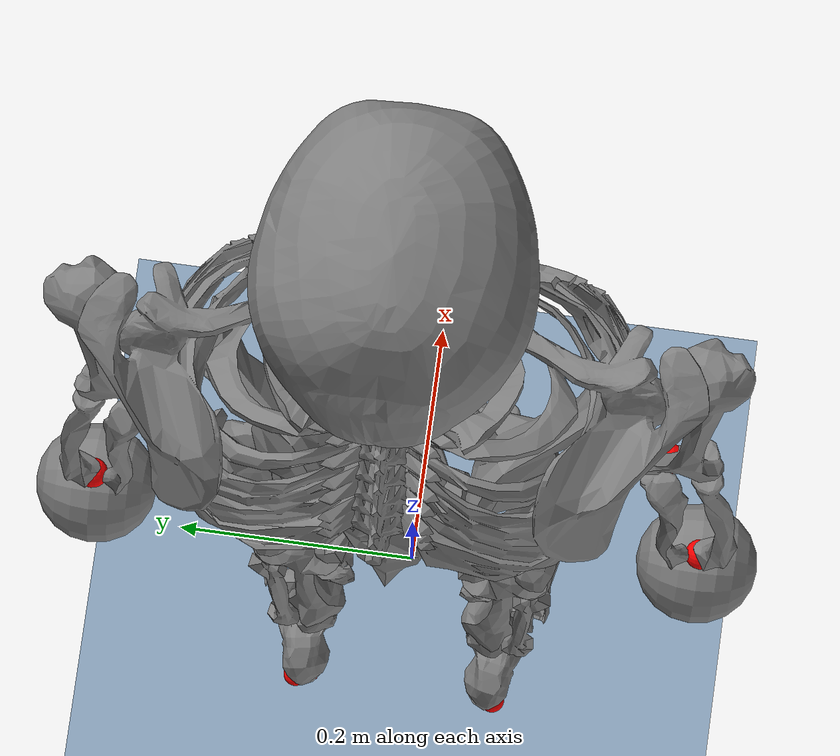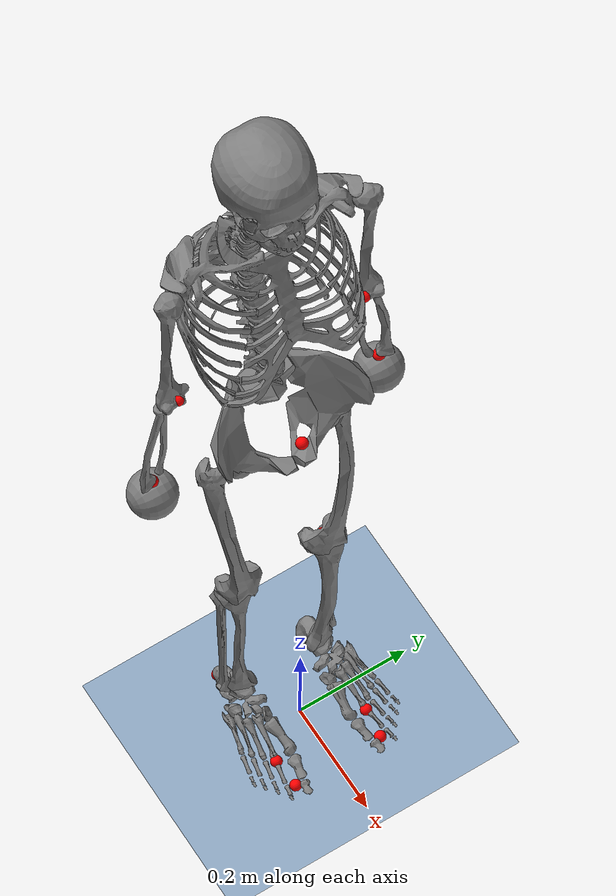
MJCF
<?xml version="1.0" encoding="utf-8"?>
<mujoco model="Musculoskeletal_model">
	<include file="Rajgopal_fullbody_mesh.xml"/>
	<compiler angle="radian" balanceinertia="true" boundmass="0.001" boundinertia="0.001"/>
	<visual>
		<headlight ambient="0.6 0.6 0.6"/>
		<rgba haze="0.35 0.45 0.55 1"/>
		<global offwidth="800" offheight="800"/>
	</visual>
	<default>
		<default class="ZXY">
			<site rgba="1 0 0 1" size="0.01" group="1"/>
			<joint armature="0.01" damping="1" frictionloss="0.0"/>
			<position kp="1000" dampratio="1" inheritrange="1"/>
			<default class="visual">
				<geom group="2" contype="0" conaffinity="0" density="0"/>
			</default>
			<default class="collision">
				<geom group="3" contype="1" conaffinity="0" rgba="0 0 1 0.5" friction="1 0.05 0.05" margin="0.001" solimp=".9 .99 .003" solref=".02 1" priority="1"/>
			</default>
		</default>
	</default>
	<option gravity="0 0 -9.81" integrator="implicitfast" timestep="0.001" cone="elliptic" impratio="5"/>
	<size njmax="1000" nconmax="400" nuser_jnt="1"/>

	<worldbody>
		<geom name="floor" pos="0 0 -0.01" size="0 0 0.125" type="plane" material="MatPlane" condim="3"/>
		<body name="pelvis" pos="0 0 0.95" childclass="ZXY" quat="0.70710678 0.70710678 0.0 0.0">
			<light mode="trackcom" directional="false" pos="0 0 4.0" dir="0 0 -1"/>
			<inertial pos="-0.0707 0 0" mass="11.777" fullinertia="0.1028 0.0871 0.0579 0 0 0"/>
			<freejoint name="floating_base_joint"/>
			<site name="pelvis_sensor" pos="0 0 0"/>
			<geom class="visual" name="r_pelvis" type="mesh" mesh="r_pelvis"/>
			<geom class="visual" name="l_pelvis" type="mesh" mesh="l_pelvis"/>
			<geom class="visual" name="sacrum" type="mesh" mesh="sacrum"/>
			<!--geom class="collision" name="C_sacrum" type="mesh" mesh="sacrum"/-->
			<geom class="collision" name="C_pelvis1" type="ellipsoid" size=".110 .13 0.11" pos="-.08 -.03 0.07" euler="0.2 0 0"/>
			<geom class="collision" name="C_pelvis2" type="ellipsoid" size=".110 .13 0.11" pos="-.08 -.03 -.07" euler="-.2 0 0"/>
			<body name="femur_r" pos="-0.056276 -0.07849  0.07726" quat="1.0 0.0 0.0 0.0">
				<inertial pos="0 -0.17 0" mass="9.3014" fullinertia="0.1339 0.0351 0.1412 0 0 0"/>
				<joint name="hip_flexion_r" type="hinge" pos="0 0 0" axis="0 0 1" limited="true" range="-0.523599 2.0944" ref="0" actuatorfrcrange="-300 300"/>
				<joint name="hip_adduction_r" type="hinge" pos="0 0 0" axis="1 0 0" limited="true" range="-0.872665 0.523599" ref="0" actuatorfrcrange="-200 200"/>
				<joint name="hip_rotation_r" type="hinge" pos="0 0 0" axis="0 1 0" limited="true" range="-0.698132 0.698132" ref="0" actuatorfrcrange="-100 100"/>
				<site name="femur_r_sensor" pos="0 0 0"/>
				<geom class="visual" name="r_femur" type="mesh" mesh="r_femur"/>
				<!--geom class="collision" name="C_r_femur" type="mesh" mesh="r_femur"/-->
				<geom class="collision" name="C_r_femur1" type="capsule" size=".080" fromto="0 0 .02 0 -0.2 .015"/>
				<geom class="collision" name="C_r_femur2" type="capsule" size=".067" fromto="0 -0.2 .015 0 -0.39 .005"/>
				<body name="tibia_r" pos="0 -0.404425 -0.00126526" quat="1.0 0.0 0.0 0.0">
					<inertial pos="0 -0.1867 0" mass="3.7075" fullinertia="0.0504 0.0051 0.0511 0 0 0"/>
					<joint name="knee_angle_r" type="hinge" pos="0 0 0" axis="0.0 -0.0707131 -0.997497" limited="true" range="-0.05 2.0944" ref="0" actuatorfrcrange="-200 200"/>
					<site name="tibia_r_sensor" pos="0 0 0"/>
					<geom class="visual" name="r_tibia" type="mesh" mesh="r_tibia"/>
					<geom class="visual" name="r_fibula" type="mesh" mesh="r_fibula"/>
					<geom class="collision" name="C_r_tibia1" type="capsule" size=".056" fromto="0 0 0 -0.01 -0.14 .0025"/>
					<geom class="collision" name="C_r_tibia2" type="capsule" size=".048" fromto="-0.01 -0.14 .0025 -0.01 -0.35 .005"/>
					<body name="talus_r" pos="-0.01 -0.4 0" quat="1.0 0.0 0.0 0.0">
						<inertial pos="0 0 0" mass="0.1" fullinertia="0.001 0.001 0.001 0 0 0"/>
						<joint name="ankle_angle_r" type="hinge" pos="0 0 0" axis="-0.105014 -0.174022 0.979126" limited="true" range="-0.698132 0.523599" ref="0" actuatorfrcrange="-150 150"/>
						<site name="talus_r_sensor" pos="0 0 0"/>
						<geom class="visual" name="r_talus" type="mesh" mesh="r_talus"/>
						<!--geom class="collision" name="C_r_talus" type="mesh" mesh="r_talus"/-->
						<body name="calcn_r" pos="-0.04877 -0.04195 0.00792" quat="1.0 0.0 0.0 0.0">
							<inertial pos="0.1 0.03 0" mass="1.25" fullinertia="0.0014 0.0039 0.0041 0 0 0"/>
							<joint name="subtalar_angle_r" type="hinge" pos="0 0 0" axis="0.78718 0.604747 -0.120949" limited="true" range="-0.349066 0.349066" ref="0" actuatorfrcrange="-50 50"/>
							<site name="calcn_r_sensor" pos="0 0 0"/>
							<geom class="visual" name="r_foot" type="mesh" mesh="r_foot"/>
							<!--geom class="collision" name="C_r_foot" type="mesh" mesh="r_foot"/-->
							<!--geom class="collision" name="C_r_foot" type="box" pos="0.08 0.012 0" quat="0.9975641 0 -0.06975647 0" size="0.085 0.02 0.042"/-->
							<geom class="collision" name="C_r_foot1" type="capsule" size=".02" fromto="0.175 0 -.03 0.010 0 -.01"/>
							<geom class="collision" name="C_r_foot3" type="capsule" size=".02" fromto="0.140 0 0.03 0.010 0 0.01"/>
							<geom class="collision" name="C_r_foot4" type="ellipsoid" size=".085 .035 0.04" pos="0.08 .02 0" euler="0 0 -.2"/>
							<site name="RCAL" pos="0.005 -0.005 -0.01"/>
							<body name="toes_r" pos="0.1788 -0.002 0.00108" quat="1.0 0.0 0.0 0.0">
								<inertial pos="0.0346 0.006 -0.0175" mass="0.2166" fullinertia="0.0001 0.0002 0.001 0 0 0"/>
								<joint name="mtp_angle_r" type="hinge" pos="0 0 0" axis="0.580954 0.0 -0.813936" limited="true" range="-0.523599 0.523599" ref="0" actuatorfrcrange="-2 2"/>
								<site name="toes_r_sensor" pos="0 0 0"/>
								<geom class="visual" name="r_bofoot" type="mesh" mesh="r_bofoot"/>
								<!--geom class="collision" name="C_r_bofoot" type="mesh" mesh="r_bofoot"/-->
								<geom class="collision" name="C_r_bofoot1" size=".0175 .045" type="capsule" zaxis="0.880954 0 -0.813936" pos="0.04 0 .01"/>
								<geom class="collision" name="C_r_bofoot2" size=".02 .040" type="capsule" zaxis="0.580954 0 -0.813936" pos="0.01 0 0"/>
								<site name="RTJC" pos="0.05 -0.005 -0.005"/>
							</body>
						</body>
					</body>
				</body>
			</body>
			<body name="femur_l" pos="-0.056276 -0.07849 -0.07726" quat="1.0 0.0 0.0 0.0">
				<inertial pos="0 -0.17 0" mass="9.3014" fullinertia="0.1339 0.0351 0.1412 0 0 0"/>
				<joint name="hip_flexion_l" type="hinge" pos="0 0 0" axis="0 0 1" limited="true" range="-0.523599 2.0944" ref="0" actuatorfrcrange="-300 300"/>
				<joint name="hip_adduction_l" type="hinge" pos="0 0 0" axis="-1 0 0" limited="true" range="-0.872665 0.523599" ref="0" actuatorfrcrange="-200 200"/>
				<joint name="hip_rotation_l" type="hinge" pos="0 0 0" axis="0 -1 0" limited="true" range="-0.698132 0.698132" ref="0" actuatorfrcrange="-100 100"/>
				<site name="femur_l_sensor" pos="0 0 0"/>
				<geom class="visual" name="l_femur" type="mesh" mesh="l_femur"/>
				<!--geom class="collision" name="l_femur" type="mesh" mesh="l_femur"/-->
				<geom class="collision" name="C_l_femur1" type="capsule" size=".080" fromto="0 0 -.02 0 -0.2 -.015"/>
				<geom class="collision" name="C_l_femur2" type="capsule" size=".067" fromto="0 -0.2 -.015 0 -0.39 -.005"/>
				<body name="tibia_l" pos="0 -0.404425 0.00126526" quat="1.0 0.0 0.0 0.0">
					<inertial pos="0 -0.1867 0" mass="3.7075" fullinertia="0.0504 0.0051 0.0511 0 0 0"/>
					<joint name="knee_angle_l" type="hinge" pos="0 0 0" axis="0.0 0.0707131 -0.997497" limited="true" range="-0.05 2.0944" ref="0" actuatorfrcrange="-200 200"/>
					<site name="tibia_l_sensor" pos="0 0 0"/>
					<geom class="visual" name="l_tibia" type="mesh" mesh="l_tibia"/>
					<geom class="visual" name="l_fibula" type="mesh" mesh="l_fibula"/>
					<geom class="collision" name="C_l_tibia1" type="capsule" size=".056" fromto="0 0 0 -0.01 -0.14 -.0025"/>
					<geom class="collision" name="C_l_tibia2" type="capsule" size=".048" fromto="-0.01 -0.14 -.0025 -0.01 -0.35 -.005"/>
					<body name="talus_l" pos="-0.01 -0.4 0" quat="1.0 0.0 0.0 0.0">
						<inertial pos="0 0 0" mass="0.1" fullinertia="0.001 0.001 0.001 0 0 0"/>
						<joint name="ankle_angle_l" type="hinge" pos="0 0 0" axis="0.105014 0.174022 0.979126" limited="true" range="-0.698132 0.523599" ref="0" actuatorfrcrange="-150 150"/>
						<site name="talus_l_sensor" pos="0 0 0"/>
						<geom class="visual" name="l_talus" type="mesh" mesh="l_talus"/>
						<!--geom class="collision" name="l_talus" type="mesh" mesh="l_talus"/-->
						<body name="calcn_l" pos="-0.04877 -0.04195 -0.00792" quat="1.0 0.0 0.0 0.0">
							<inertial pos="0.1 0.03 0" mass="1.25" fullinertia="0.0014 0.0039 0.0041 0 0 0"/>
							<joint name="subtalar_angle_l" type="hinge" pos="0 0 0" axis="-0.78718 -0.604747 -0.120949" limited="true" range="-0.349066 0.349066" ref="0" actuatorfrcrange="-50 50"/>
							<site name="calcn_l_sensor" pos="0 0 0"/>
							<geom class="visual" name="l_foot" type="mesh" mesh="l_foot"/>
							<!--geom class="collision" name="C_l_foot" type="box" pos="0.08 0.012 0" quat="0.9975641 0 0.06975647 0" size="0.085 0.02 0.042"/-->
							<geom class="collision" name="C_l_foot1" type="capsule" size=".02" fromto="0.175 0 0.03 0.010 0 0.01"/>
							<geom class="collision" name="C_l_foot3" type="capsule" size=".02" fromto="0.140 0 -.03 0.010 0 -.01"/>
							<geom class="collision" name="C_l_foot4" type="ellipsoid" size=".085 .035 0.04" pos="0.08 .02 0" euler="0 0 -.2"/>
							<site name="LCAL" pos="0.005 -0.005 0.01"/>
							<body name="toes_l" pos="0.1788 -0.002 -0.00108" quat="1.0 0.0 0.0 0.0">
								<inertial pos="0.0346 0.006 0.0175" mass="0.2166" fullinertia="0.0001 0.0002 0.001 0 0 0"/>
								<joint name="mtp_angle_l" type="hinge" pos="0 0 0" axis="-0.580954 0.0 -0.813936" limited="true" range="-0.523599 0.523599" ref="0" actuatorfrcrange="-2 2"/>
								<site name="toes_l_sensor" pos="0 0 0"/>
								<geom class="visual" name="l_bofoot" type="mesh" mesh="l_bofoot"/>
								<!--geom class="collision" name="l_bofoot" type="mesh" mesh="l_bofoot"/-->
								<geom class="collision" name="C_l_bofoot1" type="capsule" size=".0175 .045" zaxis="-0.880954 0 -0.813936" pos="0.04 0 -.01"/>
								<geom class="collision" name="C_l_bofoot2" type="capsule" size=".02 .040" zaxis="-0.580954 0 -0.813936" pos="0.01 0 0"/>
								<site name="LTJC" pos="0.05 -0.005 0.005"/>
							</body>
						</body>
					</body>
				</body>
			</body>
			<body name="torso" pos="-0.1007 0.0815 0" quat="1.0 0.0 0.0 0.0">
				<inertial pos="-0.03 0.32 0" mass="26.8266" fullinertia="1.4745 0.7555 1.4314 0 0 0"/>
				<joint name="lumbar_extension" type="hinge" pos="0 0 0" axis="0 0 1" limited="true" range="-1.047198 1.047198" ref="0" actuatorfrcrange="-200 200"/>
				<joint name="lumbar_bending" type="hinge" pos="0 0 0" axis="1 0 0" limited="true" range="-1.047198 1.047198" ref="0" actuatorfrcrange="-200 200"/>
				<joint name="lumbar_rotation" type="hinge" pos="0 0 0" axis="0 1 0" limited="true" range="-0.52 0.52" ref="0" actuatorfrcrange="-100 100"/>
				<site name="torso_sensor" pos="0 0 0"/>
				<geom class="visual" name="hat_spine" type="mesh" mesh="hat_spine"/>
				<geom class="visual" name="hat_jaw" type="mesh" mesh="hat_jaw"/>
				<geom class="visual" name="hat_skull" type="mesh" mesh="hat_skull"/>
				<geom class="visual" name="hat_ribs_scap" type="mesh" mesh="hat_ribs_scap"/>
				<site name="head_sensor" pos="0.01 0.56 0.00"/>
				<body name="humerus_r" pos="0.003155 0.3715 0.17" quat="1.0 0.0 0.0 0.0">
					<inertial pos="0 -0.164502 0" mass="2.0325" fullinertia="0.011946 0.004121 0.013409 0 0 0"/>
					<joint name="arm_flex_r" type="hinge" pos="0 0 0" axis="0 0 1" limited="true" range="-1.5708 1.5708" ref="0" actuatorfrcrange="-80 80"/>
					<joint name="arm_add_r" type="hinge" pos="0 0 0" axis="1 0 0" limited="true" range="-2.0944 0.523599" ref="0" actuatorfrcrange="-80 80"/>
					<joint name="arm_rot_r" type="hinge" pos="0 0 0" axis="0 1 0" limited="true" range="-1.5708 1.5708" ref="0" actuatorfrcrange="-50 50"/>
					<site name="humerus_r_sensor" pos="0 0 0"/>
					<geom class="visual" name="humerus_rv" type="mesh" mesh="humerus_rv"/>
					<body name="ulna_r" pos="0.013144 -0.286273 -0.009595" quat="1.0 0.0 0.0 0.0">
						<inertial pos="0 -0.120525 0" mass="0.6075" fullinertia="0.002962 0.000618 0.003213 0 0 0"/>
						<joint name="elbow_flex_r" type="hinge" pos="0 0 0" axis="0.226047 0.022269 0.973862" limited="true" range="0 2.617994" ref="0" actuatorfrcrange="-40 40"/>
						<site name="ulna_r_sensor" pos="0 0 0"/>
						<geom class="visual" name="ulna_rv" type="mesh" mesh="ulna_rv"/>
						<body name="radius_r" pos="-0.006727 -0.013007 0.026083" quat="1.0 0.0 0.0 0.0">
							<inertial pos="0 -0.120525 0" mass="0.6075" fullinertia="0.002962 0.000618 0.003213 0 0 0"/>
							<joint name="pro_sup_r" type="hinge" pos="0 0 0" axis="0.056398 0.998406 0.001952" limited="true" range="0 2.617994" ref="0" actuatorfrcrange="-20 20"/>
							<geom class="visual" name="radius_rv" type="mesh" mesh="radius_rv"/>
							<body name="hand_r" pos="-0.008797 -0.235841  0.01361" quat="1.0 0.0 0.0 0.0">
								<inertial pos="0 -0.068095 0" mass="0.4575" fullinertia="0.000892 0.000547 0.00134 0 0 0"/>
								<joint name="wrist_flex_r" type="hinge" pos="0 0 0" axis="0 0 1" limited="true" range="-1.22173 1.22173" ref="0" actuatorfrcrange="-15 15"/>
								<joint name="wrist_dev_r" type="hinge" pos="0 0 0" axis="1 0 0" limited="true" range="-0.436332 0.610865" ref="0" actuatorfrcrange="-10 10"/>
								<site name="hand_r_sensor" pos="0 0 0"/>
								<geom class="visual" name="hand_r_simplified" type="sphere" pos="0 -0.04 0" size="0.04"/>
							</body>
						</body>
					</body>
				</body>
				<body name="humerus_l" pos="0.003155 0.3715 -0.17" quat="1.0 0.0 0.0 0.0">
					<inertial pos="0 -0.164502 0" mass="2.0325" fullinertia="0.011946 0.004121 0.013409 0 0 0"/>
					<joint name="arm_flex_l" type="hinge" pos="0 0 0" axis="0 0 1" limited="true" range="-1.5708 1.5708" ref="0" actuatorfrcrange="-80 80"/>
					<joint name="arm_add_l" type="hinge" pos="0 0 0" axis="-1 0 0" limited="true" range="-2.0944 0.523599" ref="0" actuatorfrcrange="-80 80"/>
					<joint name="arm_rot_l" type="hinge" pos="0 0 0" axis="0 -1 0" limited="true" range="-1.5708 1.5708" ref="0" actuatorfrcrange="-50 50"/>
					<site name="humerus_l_sensor" pos="0 0 0"/>
					<geom class="visual" name="humerus_lv" type="mesh" mesh="humerus_lv"/>
					<body name="ulna_l" pos="0.013144 -0.286273 0.009595" quat="1.0 0.0 0.0 0.0">
						<inertial pos="0 -0.120525 0" mass="0.6075" fullinertia="0.002962 0.000618 0.003213 0 0 0"/>
						<joint name="elbow_flex_l" type="hinge" pos="0 0 0" axis="-0.226047 -0.022269 0.973862" limited="true" range="0 2.617994" ref="0" actuatorfrcrange="-40 40"/>
						<site name="ulna_l_sensor" pos="0 0 0"/>
						<geom class="visual" name="ulna_lv" type="mesh" mesh="ulna_lv"/>
						<body name="radius_l" pos="-0.006727 -0.013007 -0.026083" quat="1.0 0.0 0.0 0.0">
							<inertial pos="0 -0.120525 0" mass="0.6075" fullinertia="0.002962 0.000618 0.003213 0 0 0"/>
							<joint name="pro_sup_l" type="hinge" pos="0 0 0" axis="-0.056398 -0.998406 0.001952" limited="true" range="0 2.617994" ref="0" actuatorfrcrange="-20 20"/>
							<geom class="visual" name="radius_lv" type="mesh" mesh="radius_lv"/>
							<body name="hand_l" pos="-0.008797 -0.235841 -0.01361" quat="1.0 0.0 0.0 0.0">
								<inertial pos="0 -0.068095 0" mass="0.4575" fullinertia="0.000892 0.000547 0.00134 0 0 0"/>
								<joint name="wrist_flex_l" type="hinge" pos="0 0 0" axis="0 0 1" limited="true" range="-1.22173 1.22173" ref="0" actuatorfrcrange="-15 15"/>
								<joint name="wrist_dev_l" type="hinge" pos="0 0 0" axis="-1 0 0" limited="true" range="-0.436332 0.610865" ref="0" actuatorfrcrange="-10 10"/>
								<site name="hand_l_sensor" pos="0 0 0"/>
								<geom class="visual" name="hand_l_simplified" type="sphere" pos="0 -0.04 0" size="0.04"/>
							</body>
						</body>
					</body>
				</body>
			</body>
		</body>
		<camera name="for_testing" pos="0 0 0" euler="0 0 0"/>
	</worldbody>

	<asset>
		<texture type="skybox" builtin="gradient" rgb1=".6 .8 1.0" rgb2="0 0 0" width="512" height="512"/>
		<texture name="texplane" type="2d" builtin="checker" rgb2=".6 .7 .8" rgb1=".5 .6 .7" width="100" height="100"/>
		<material name="MatPlane" reflectance="0.2" texture="texplane" texrepeat="1 1" texuniform="true"/>
	</asset>

	<actuator>
		<position class="ZXY" name="hip_flexion_r" joint="hip_flexion_r" kp="2500"/>
		<position class="ZXY" name="hip_adduction_r" joint="hip_adduction_r" kp="2000"/>
		<position class="ZXY" name="hip_rotation_r" joint="hip_rotation_r" kp="1000"/>
		<position class="ZXY" name="knee_angle_r" joint="knee_angle_r" kp="1800"/>
		<position class="ZXY" name="ankle_angle_r" joint="ankle_angle_r" kp="1000"/>
		<position class="ZXY" name="subtalar_angle_r" joint="subtalar_angle_r" kp="600"/>
		<position class="ZXY" name="mtp_angle_r" joint="mtp_angle_r" kp="20"/>

		<position class="ZXY" name="hip_flexion_l" joint="hip_flexion_l" kp="2500"/>
		<position class="ZXY" name="hip_adduction_l" joint="hip_adduction_l" kp="2000"/>
		<position class="ZXY" name="hip_rotation_l" joint="hip_rotation_l" kp="1000"/>
		<position class="ZXY" name="knee_angle_l" joint="knee_angle_l" kp="1800"/>
		<position class="ZXY" name="ankle_angle_l" joint="ankle_angle_l" kp="1000"/>
		<position class="ZXY" name="subtalar_angle_l" joint="subtalar_angle_l" kp="600"/>
		<position class="ZXY" name="mtp_angle_l" joint="mtp_angle_l" kp="20"/>

		<position class="ZXY" name="lumbar_extension" joint="lumbar_extension" kp="1500"/>
		<position class="ZXY" name="lumbar_bending" joint="lumbar_bending" kp="1500"/>
		<position class="ZXY" name="lumbar_rotation" joint="lumbar_rotation" kp="800"/>

		<position class="ZXY" name="arm_flex_r" joint="arm_flex_r" kp="800"/>
		<position class="ZXY" name="arm_add_r" joint="arm_add_r" kp="800"/>
		<position class="ZXY" name="arm_rot_r" joint="arm_rot_r" kp="500"/>
		<position class="ZXY" name="elbow_flex_r" joint="elbow_flex_r" kp="200"/>
		<position class="ZXY" name="pro_sup_r" joint="pro_sup_r" kp="200"/>
		<position class="ZXY" name="wrist_flex_r" joint="wrist_flex_r" kp="100"/>
		<position class="ZXY" name="wrist_dev_r" joint="wrist_dev_r" kp="50"/>

		<position class="ZXY" name="arm_flex_l" joint="arm_flex_l" kp="800"/>
		<position class="ZXY" name="arm_add_l" joint="arm_add_l" kp="800"/>
		<position class="ZXY" name="arm_rot_l" joint="arm_rot_l" kp="500"/>
		<position class="ZXY" name="elbow_flex_l" joint="elbow_flex_l" kp="200"/>
		<position class="ZXY" name="pro_sup_l" joint="pro_sup_l" kp="200"/>
		<position class="ZXY" name="wrist_flex_l" joint="wrist_flex_l" kp="100"/>
		<position class="ZXY" name="wrist_dev_l" joint="wrist_dev_l" kp="50"/>
	</actuator>

	<equality>
	</equality>

	<contact>
	</contact>

	<sensor>
		<framepos name="pelvis_1" objtype="site" objname="pelvis_sensor"/>
		<velocimeter name="pelvis_sensor" site="pelvis_sensor"/>

		<velocimeter name="femur_r_sensor" site="femur_r_sensor"/>
		<velocimeter name="tibia_r_sensor" site="tibia_r_sensor"/>
		<velocimeter name="talus_r_sensor" site="talus_r_sensor"/>
		<velocimeter name="calcn_r_sensor" site="calcn_r_sensor"/>
		<velocimeter name="toes_r_sensor" site="toes_r_sensor"/>

		<velocimeter name="femur_l_sensor" site="femur_l_sensor"/>
		<velocimeter name="tibia_l_sensor" site="tibia_l_sensor"/>
		<velocimeter name="talus_l_sensor" site="talus_l_sensor"/>
		<velocimeter name="calcn_l_sensor" site="calcn_l_sensor"/>
		<velocimeter name="toes_l_sensor" site="toes_l_sensor"/>

		<velocimeter name="torso_sensor" site="torso_sensor"/>
		<velocimeter name="head_sensor" site="head_sensor"/>

		<velocimeter name="humerus_r_sensor" site="humerus_r_sensor"/>
		<velocimeter name="ulna_r_sensor" site="ulna_r_sensor"/>
		<velocimeter name="hand_r_sensor" site="hand_r_sensor"/>

		<velocimeter name="humerus_l_sensor" site="humerus_l_sensor"/>
		<velocimeter name="ulna_l_sensor" site="ulna_l_sensor"/>
		<velocimeter name="hand_l_sensor" site="hand_l_sensor"/>
	</sensor>

	<keyframe>
	</keyframe>
</mujoco>
